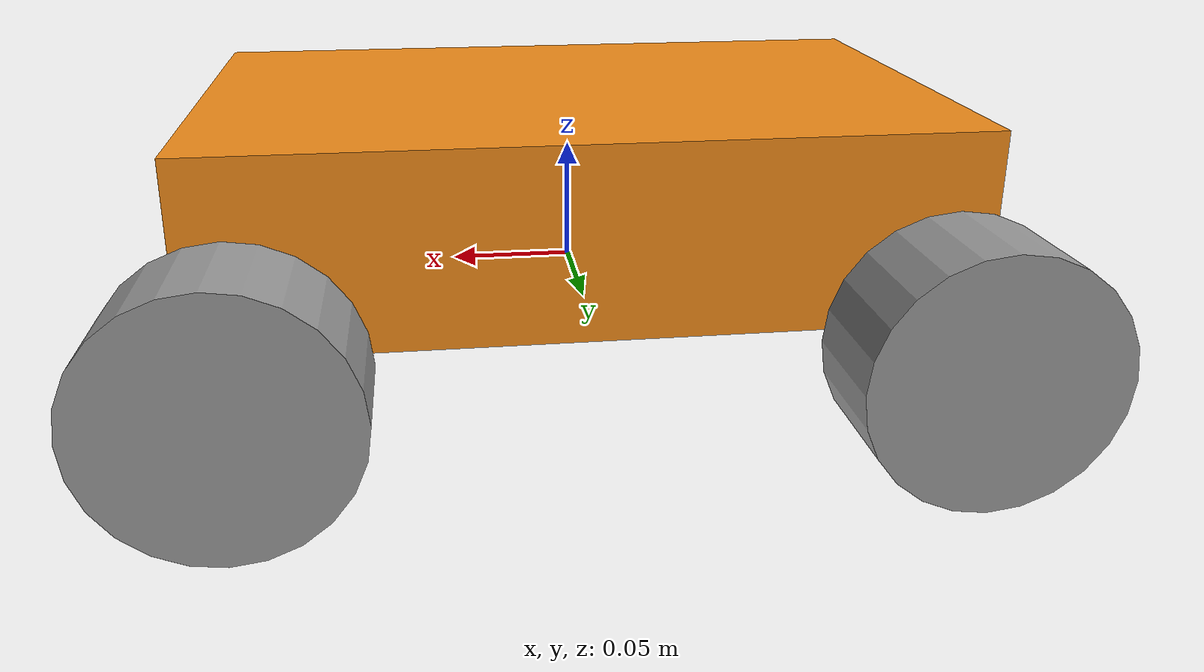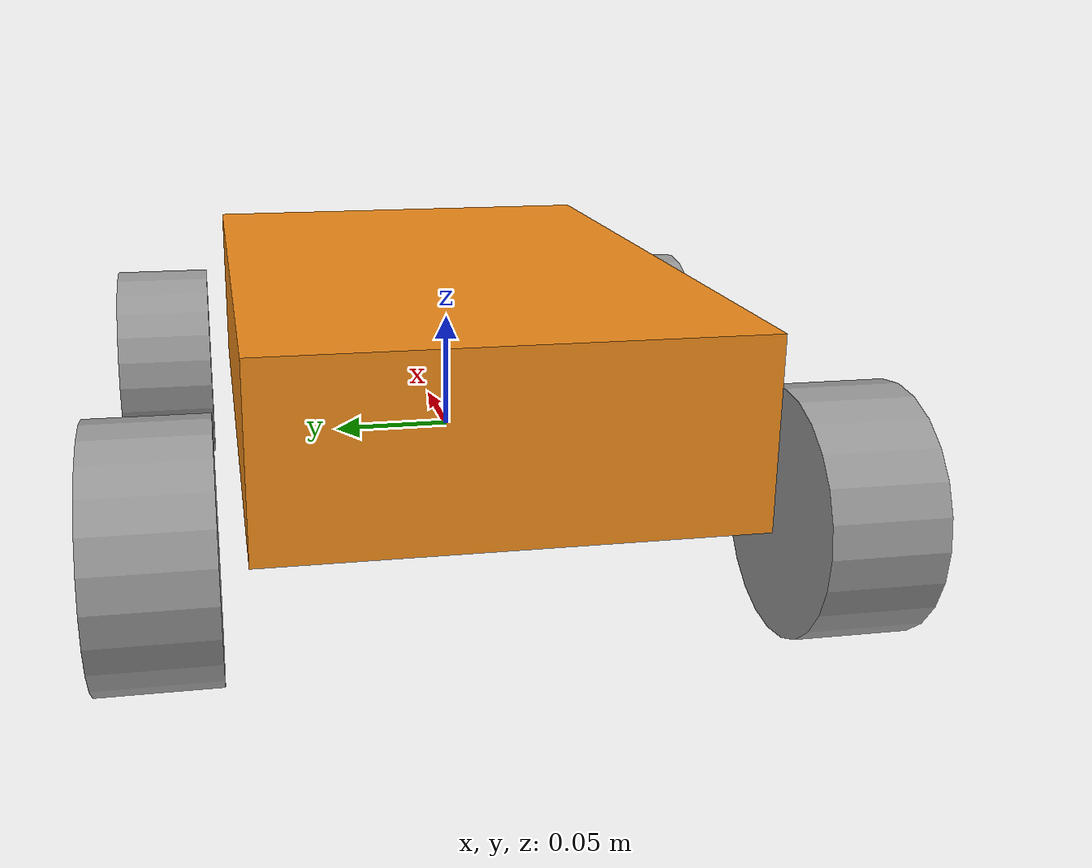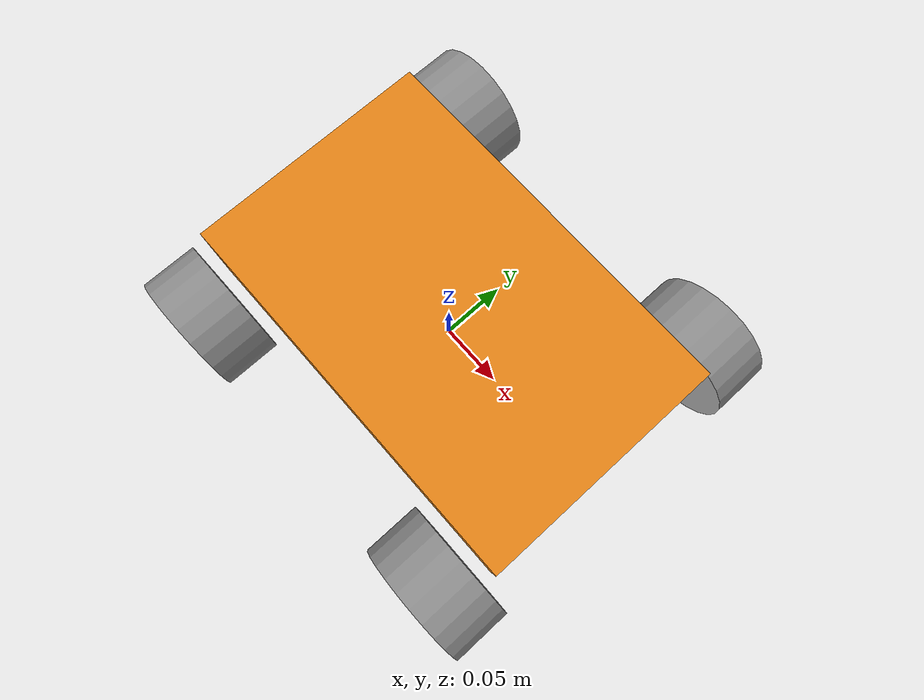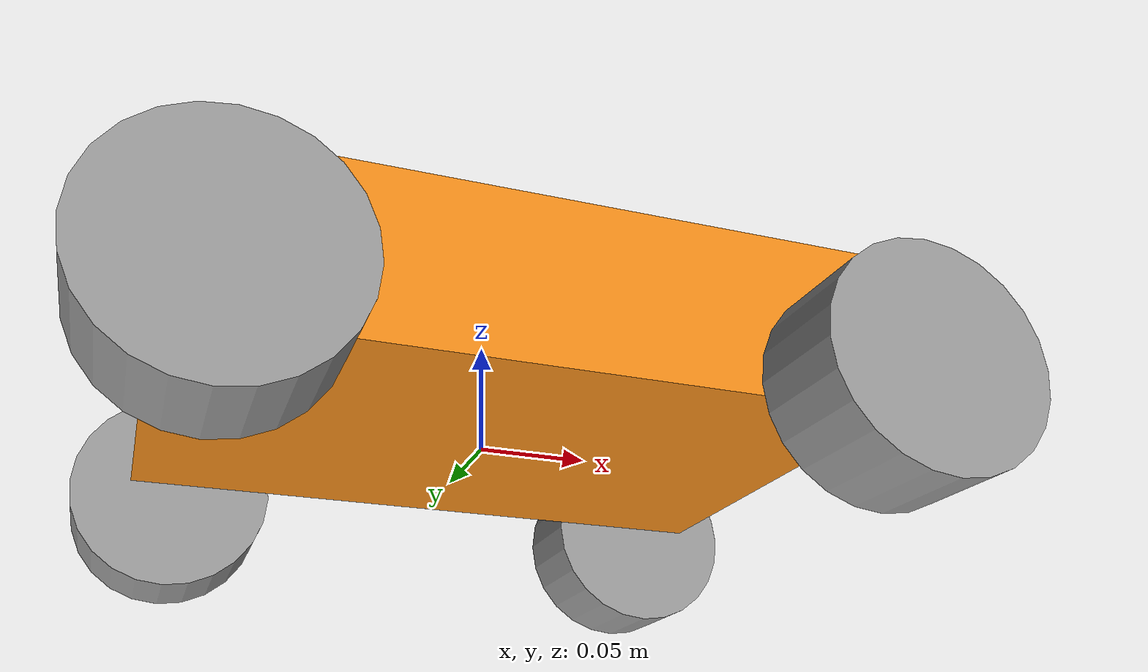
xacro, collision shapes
<?xml version="1.0"?>
<robot xmlns:xacro="http://www.ros.org/wiki/xacro" xmlns:gz="http://gazebosim.org/schema">

    <xacro:include filename="inertial_macros.xacro" />

    <!-- Base Link -->
    <link name="base_link">

    </link>

    <!-- Joint connecting frame to base_link -->
    <joint name="frame_joint" type="fixed">
        <parent link="base_link" />
        <child link="frame" />
        <origin xyz="-0.15 0 0" />
    </joint>

    <!-- frame -->
    <link name="frame">
        <visual>
            <origin xyz="0.15 0 0.0375" />
            <geometry>
                <box size="0.3 0.19 0.075" />
            </geometry>
            <material name="orange" />
        </visual>
        <collision>
            <origin xyz="0.15 0 0.0375" />
            <geometry>
                <box size="0.3 0.19 0.075" />
            </geometry>
        </collision>
        <xacro:inertial_box mass="2.2" x="0.3" y="0.19" z="0.075">
            <origin xyz="0.15 0 0.0375" rpy="0 0 0" />
        </xacro:inertial_box>
    </link>

    <!-- Joint connecting front_left_wheel to base_link -->
    <joint name="front_left_joint" type="continuous">
        <parent link="base_link" />
        <child link="front_left_wheel" />
        <origin xyz="0.130 0.1275 0" rpy="-${pi/2} 0 0" />
        <axis xyz="0 0 1" />
        <limit effort="10000" velocity="10" />
        <dynamics damping="1.0" friction="1.0" />
    </joint>

    <!-- Front Left Wheel -->
    <link name="front_left_wheel">
        <visual name='front_left_wheel_visual'>
            <origin xyz="0 0 0" rpy="1.5708 0 0" />
            <geometry>
                <mesh filename="package://gulliverkli/meshes/mecanum_wheel_left.stl" scale="1 1 1" />
            </geometry>
            <material name="grey" />
        </visual>
        <collision>
            <geometry>
                <cylinder radius="0.0485" length="0.045" />
            </geometry>
        </collision>
        <xacro:inertial_cylinder mass="0.15" length="0.045" radius="0.0485">
            <origin xyz="0 0 0" rpy="0 0 0" />
        </xacro:inertial_cylinder>
    </link>

    <!-- Joint connecting front_right_wheel to base_link -->
    <joint name="front_right_joint" type="continuous">
        <parent link="base_link" />
        <child link="front_right_wheel" />
        <origin xyz="0.130 -0.1275 0" rpy="${pi/2} 0 0" />
        <axis xyz="0 0 -1" />
        <limit effort="10000" velocity="10" />
        <dynamics damping="1.0" friction="1.0" />
    </joint>

    <!-- Front Right Wheel -->
    <link name="front_right_wheel">
        <visual name='front_right_wheel_visual'>
            <origin xyz="0 0 0" rpy="1.5708 0 0" />
            <geometry>
                <mesh filename="package://gulliverkli/meshes/mecanum_wheel_right.stl" scale="1 1 1" />
            </geometry>
            <material name="grey" />
        </visual>
        <collision>
            <geometry>
                <cylinder radius="0.0485" length="0.045" />
            </geometry>
        </collision>
        <xacro:inertial_cylinder mass="0.15" length="0.045" radius="0.0485">
            <origin xyz="0 0 0" rpy="0 0 0" />
        </xacro:inertial_cylinder>
    </link>

    <!-- Joint connecting rear_left_wheel to base_link -->
    <joint name="rear_left_joint" type="continuous">
        <parent link="base_link" />
        <child link="rear_left_wheel" />
        <origin xyz="-0.130 0.1275 0" rpy="-${pi/2} 0 0" />
        <axis xyz="0 0 1" />
        <limit effort="10000" velocity="10" />
        <dynamics damping="1.0" friction="1.0" />
    </joint>

    <!-- rear Left Wheel -->
    <link name="rear_left_wheel">
        <visual name='rear_left_wheel_visual'>
            <origin xyz="0 0 0" rpy="1.5708 0 0" />
            <geometry>
                <mesh filename="package://gulliverkli/meshes/mecanum_wheel_right.stl" scale="1 1 1" />
            </geometry>
            <material name="grey" />
        </visual>
        <collision>
            <geometry>
                <cylinder radius="0.0485" length="0.045" />
            </geometry>
        </collision>
        <xacro:inertial_cylinder mass="0.15" length="0.045" radius="0.0485">
            <origin xyz="0 0 0" rpy="0 0 0" />
        </xacro:inertial_cylinder>
    </link>

    <!-- Joint connecting rear_right_wheel to base_link -->
    <joint name="rear_right_joint" type="continuous">
        <parent link="base_link" />
        <child link="rear_right_wheel" />
        <origin xyz="-0.130 -0.1275 0" rpy="${pi/2} 0 0" />
        <axis xyz="0 0 -1" />
        <limit effort="10000" velocity="10" />
        <dynamics damping="1.0" friction="1.0" />
    </joint>

    <!-- rear Right Wheel -->
    <link name="rear_right_wheel">
        <visual name='rear_right_wheel_visual'>
            <origin xyz="0 0 0" rpy="1.5708 0 0" />
            <geometry>
                <mesh filename="package://gulliverkli/meshes/mecanum_wheel_left.stl" scale="1 1 1" />
            </geometry>
            <material name="grey" />
        </visual>
        <collision>
            <geometry>
                <cylinder radius="0.0485" length="0.045" />
            </geometry>
        </collision>
        <xacro:inertial_cylinder mass="0.15" length="0.045" radius="0.0485">
            <origin xyz="0 0 0" rpy="0 0 0" />
        </xacro:inertial_cylinder>
    </link>

    <!-- STEP 4 - Gazebo frictions -->
    <gazebo reference='front_left_wheel'>
        <collision>
            <surface>
                <friction>
                    <ode>
                        <mu>1.5</mu>
                        <mu2>0.0</mu2>
                        <fdir1 gz:expressed_in="base_link">1 -1 0</fdir1>
                    </ode>
                </friction>
            </surface>
        </collision>
    </gazebo>

    <gazebo reference='rear_left_wheel'>
        <collision>
            <surface>
                <friction>
                    <ode>
                        <mu>1.5</mu>
                        <mu2>0.0</mu2>
                        <fdir1 gz:expressed_in="base_link">1 1 0</fdir1>
                    </ode>
                </friction>
            </surface>
        </collision>
    </gazebo>

    <gazebo reference='front_right_wheel'>
        <collision>
            <surface>
                <friction>
                    <ode>
                        <mu>1.5</mu>
                        <mu2>0.0</mu2>
                        <fdir1 gz:expressed_in="base_link">1 1 0</fdir1>
                    </ode>
                </friction>
            </surface>
        </collision>
    </gazebo>

    <gazebo reference='rear_right_wheel'>
        <collision>
            <surface>
                <friction>
                    <ode>
                        <mu>1.5</mu>
                        <mu2>0.0</mu2>
                        <fdir1 gz:expressed_in="base_link">1 -1 0</fdir1>
                    </ode>
                </friction>
            </surface>
        </collision>
    </gazebo>

    <gazebo reference="base_link">
        <mu1>0.000002</mu1>
        <mu2>0.000002</mu2>
    </gazebo>

</robot>
